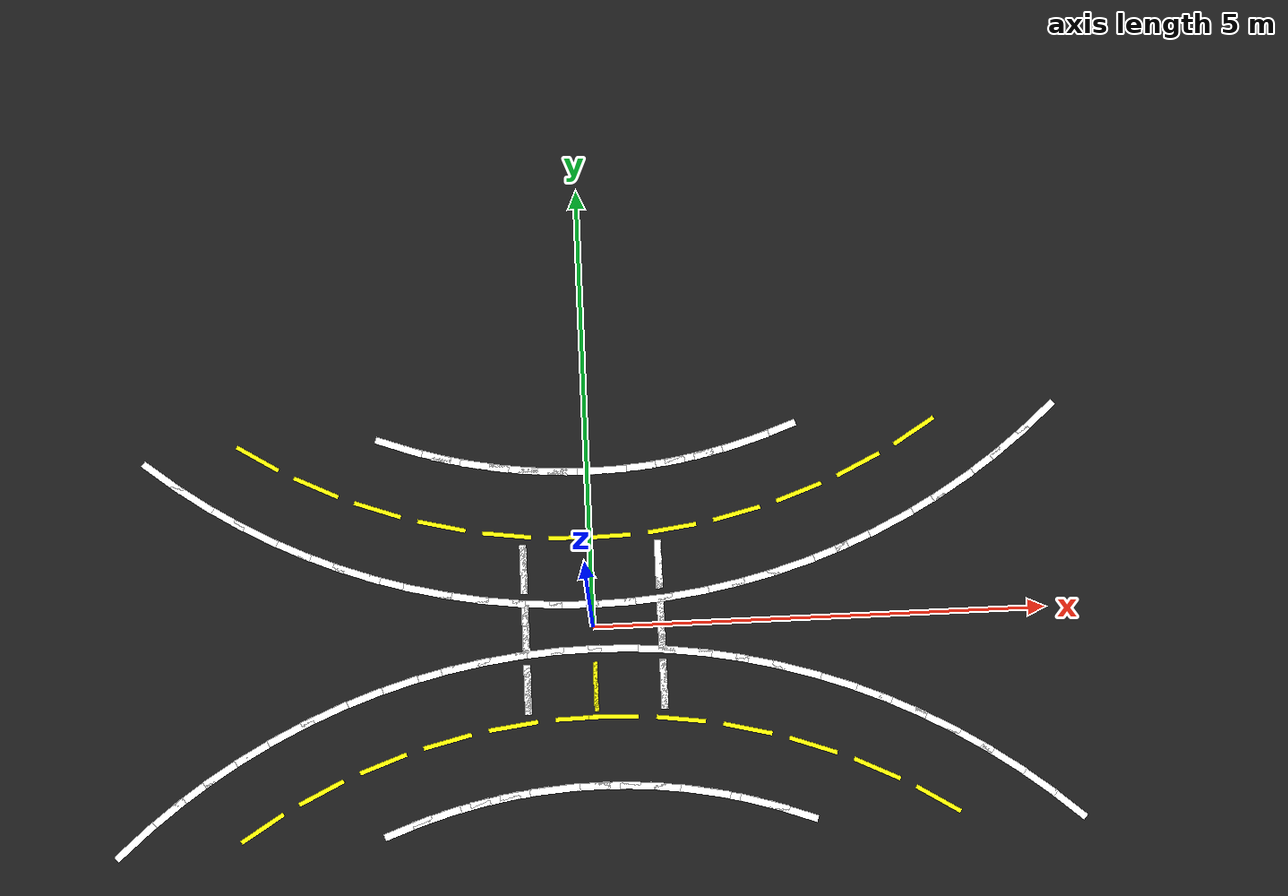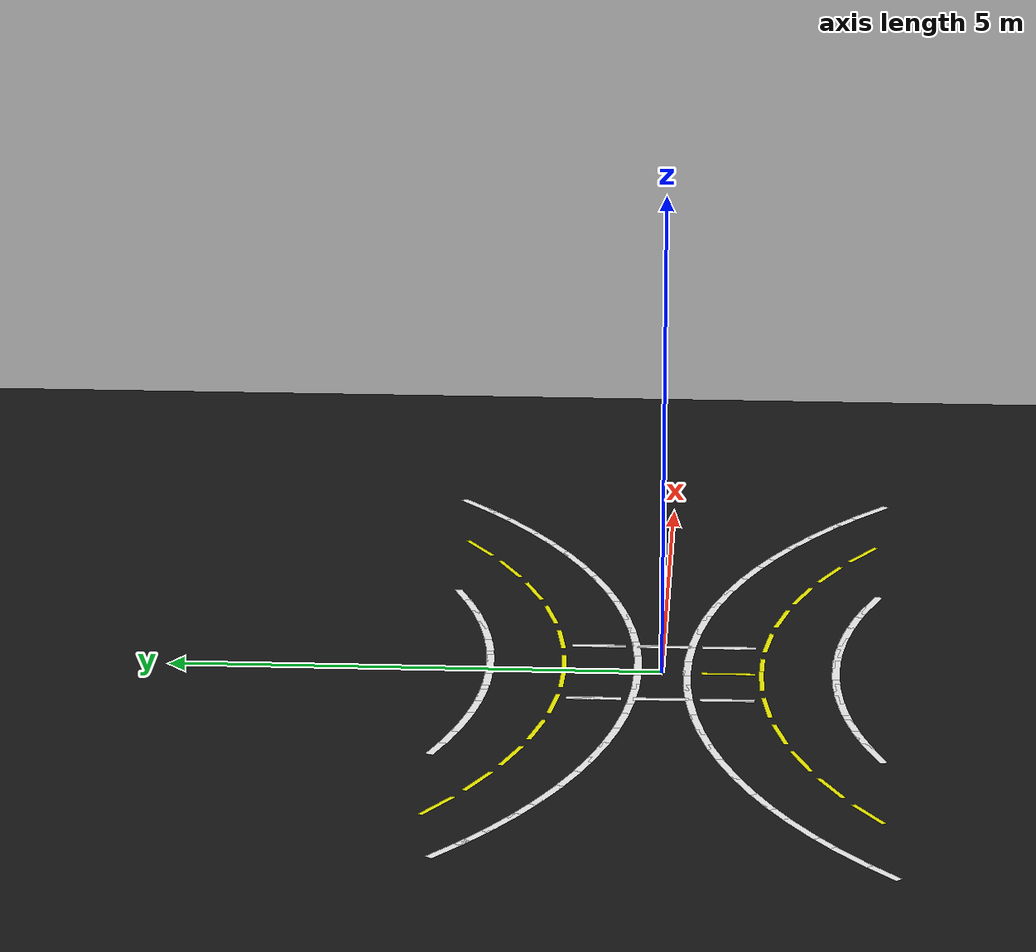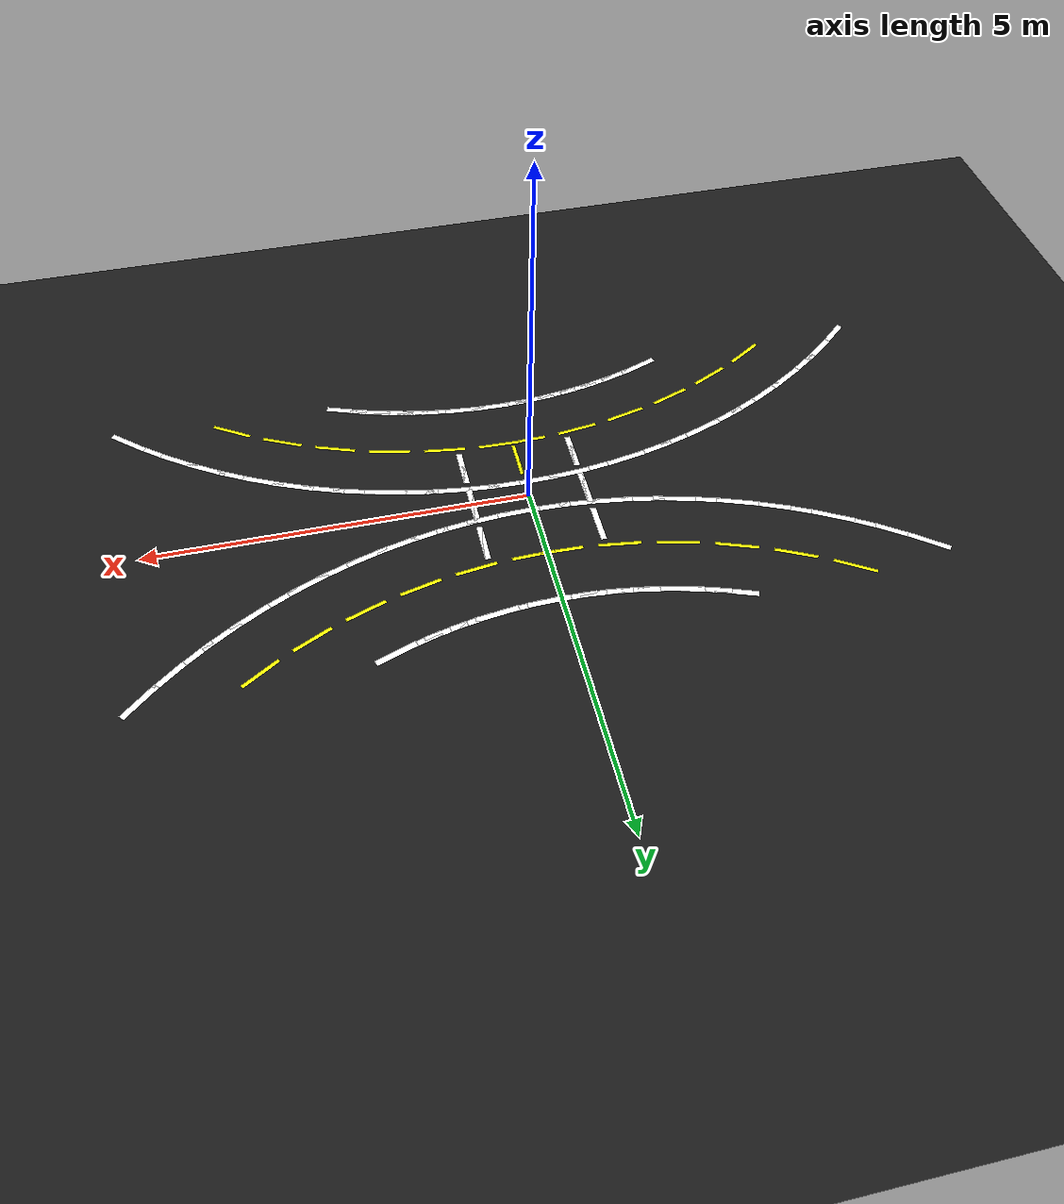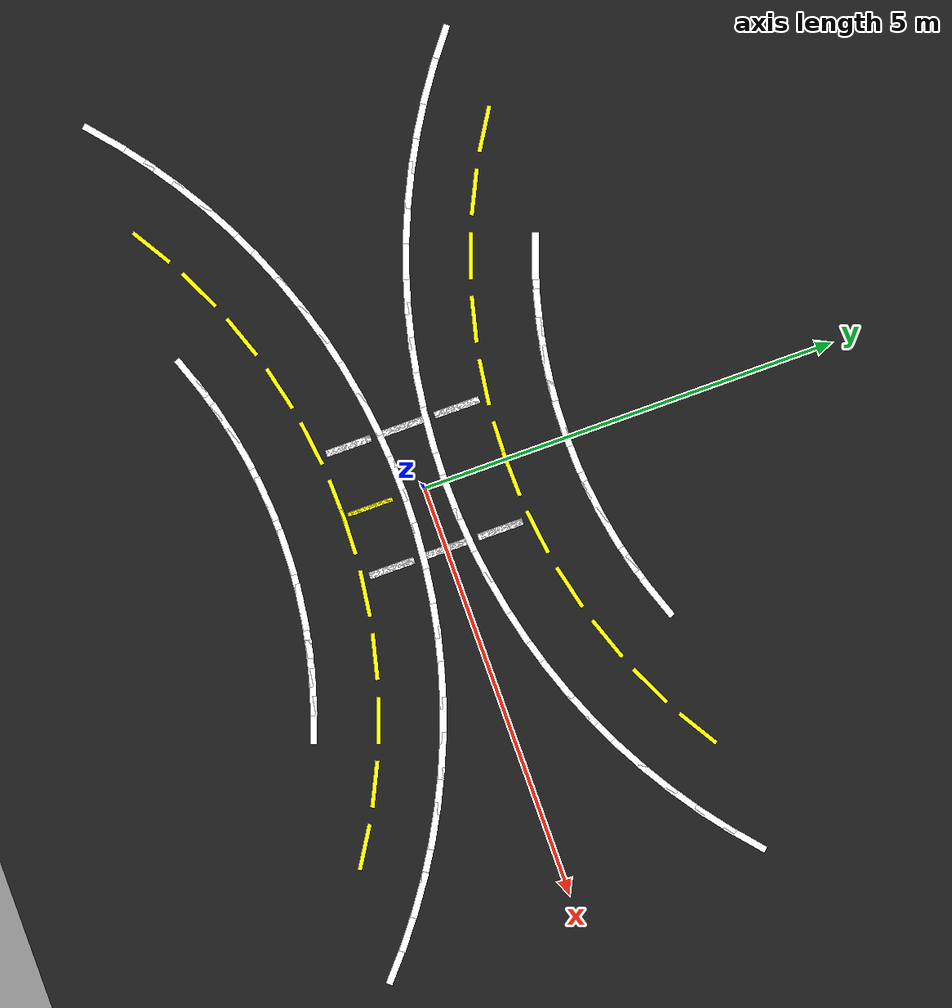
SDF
<sdf version="1.6">
 <world name="lane_world">
  <model name="ground">
   <static>true</static>
   <link name="link">
    <visual name="v">
     <geometry><plane><normal>0 0 1</normal><size>80 80</size></plane></geometry>
     <material><ambient>0.10 0.10 0.10 1</ambient><diffuse>0.10 0.10 0.10 1</diffuse></material>
    </visual>
    <collision name="c"><geometry><plane><normal>0 0 1</normal><size>80 80</size></plane></geometry></collision>
   </link>
  </model>
  <model name="seg_0000">
   <static>true</static>
   <pose>0.2046 0.2527 0.002 0 0 -3.1152</pose>
   <link name="link">
    <visual name="v">
     <geometry><box><size>0.550 0.080 0.0020</size></box></geometry>
     <material><ambient>1 1 1 1</ambient><diffuse>1 1 1 1</diffuse></material>
    </visual>
   </link>
  </model>
  <model name="seg_0001">
   <static>true</static>
   <pose>0.1650 1.7522 0.002 0 0 -3.1152</pose>
   <link name="link">
    <visual name="v">
     <geometry><box><size>0.550 0.080 0.0020</size></box></geometry>
     <material><ambient>1 1 1 1</ambient><diffuse>1 1 1 1</diffuse></material>
    </visual>
   </link>
  </model>
  <model name="seg_0002">
   <static>true</static>
   <pose>0.1848 1.0024 0.002 0 0 -3.1152</pose>
   <link name="link">
    <visual name="v">
     <geometry><box><size>0.550 0.05 0.0020</size></box></geometry>
     <material><ambient>1 1 0 1</ambient><diffuse>1 1 0 1</diffuse></material>
    </visual>
   </link>
  </model>
  <model name="seg_0003">
   <static>true</static>
   <pose>0.6132 0.2743 0.002 0 0 -3.0624</pose>
   <link name="link">
    <visual name="v">
     <geometry><box><size>0.550 0.080 0.0020</size></box></geometry>
     <material><ambient>1 1 1 1</ambient><diffuse>1 1 1 1</diffuse></material>
    </visual>
   </link>
  </model>
  <model name="seg_0004">
   <static>true</static>
   <pose>0.4945 1.7696 0.002 0 0 -3.0624</pose>
   <link name="link">
    <visual name="v">
     <geometry><box><size>0.550 0.080 0.0020</size></box></geometry>
     <material><ambient>1 1 1 1</ambient><diffuse>1 1 1 1</diffuse></material>
    </visual>
   </link>
  </model>
  <model name="seg_0005">
   <static>true</static>
   <pose>1.0200 0.3174 0.002 0 0 -3.0096</pose>
   <link name="link">
    <visual name="v">
     <geometry><box><size>0.550 0.080 0.0020</size></box></geometry>
     <material><ambient>1 1 1 1</ambient><diffuse>1 1 1 1</diffuse></material>
    </visual>
   </link>
  </model>
  <model name="seg_0006">
   <static>true</static>
   <pose>0.8226 1.8044 0.002 0 0 -3.0096</pose>
   <link name="link">
    <visual name="v">
     <geometry><box><size>0.550 0.080 0.0020</size></box></geometry>
     <material><ambient>1 1 1 1</ambient><diffuse>1 1 1 1</diffuse></material>
    </visual>
   </link>
  </model>
  <model name="seg_0007">
   <static>true</static>
   <pose>0.9213 1.0609 0.002 0 0 -3.0096</pose>
   <link name="link">
    <visual name="v">
     <geometry><box><size>0.550 0.05 0.0020</size></box></geometry>
     <material><ambient>1 1 0 1</ambient><diffuse>1 1 0 1</diffuse></material>
    </visual>
   </link>
  </model>
  <model name="seg_0008">
   <static>true</static>
   <pose>1.4241 0.3820 0.002 0 0 -2.9568</pose>
   <link name="link">
    <visual name="v">
     <geometry><box><size>0.550 0.080 0.0020</size></box></geometry>
     <material><ambient>1 1 1 1</ambient><diffuse>1 1 1 1</diffuse></material>
    </visual>
   </link>
  </model>
  <model name="seg_0009">
   <static>true</static>
   <pose>1.1484 1.8564 0.002 0 0 -2.9568</pose>
   <link name="link">
    <visual name="v">
     <geometry><box><size>0.550 0.080 0.0020</size></box></geometry>
     <material><ambient>1 1 1 1</ambient><diffuse>1 1 1 1</diffuse></material>
    </visual>
   </link>
  </model>
  <model name="seg_0010">
   <static>true</static>
   <pose>1.8241 0.4677 0.002 0 0 -2.9040</pose>
   <link name="link">
    <visual name="v">
     <geometry><box><size>0.550 0.080 0.0020</size></box></geometry>
     <material><ambient>1 1 1 1</ambient><diffuse>1 1 1 1</diffuse></material>
    </visual>
   </link>
  </model>
  <model name="seg_0011">
   <static>true</static>
   <pose>1.4711 1.9256 0.002 0 0 -2.9040</pose>
   <link name="link">
    <visual name="v">
     <geometry><box><size>0.550 0.080 0.0020</size></box></geometry>
     <material><ambient>1 1 1 1</ambient><diffuse>1 1 1 1</diffuse></material>
    </visual>
   </link>
  </model>
  <model name="seg_0012">
   <static>true</static>
   <pose>1.6476 1.1967 0.002 0 0 -2.9040</pose>
   <link name="link">
    <visual name="v">
     <geometry><box><size>0.550 0.05 0.0020</size></box></geometry>
     <material><ambient>1 1 0 1</ambient><diffuse>1 1 0 1</diffuse></material>
    </visual>
   </link>
  </model>
  <model name="seg_0013">
   <static>true</static>
   <pose>2.2191 0.5745 0.002 0 0 -2.8512</pose>
   <link name="link">
    <visual name="v">
     <geometry><box><size>0.550 0.080 0.0020</size></box></geometry>
     <material><ambient>1 1 1 1</ambient><diffuse>1 1 1 1</diffuse></material>
    </visual>
   </link>
  </model>
  <model name="seg_0014">
   <static>true</static>
   <pose>1.7896 2.0117 0.002 0 0 -2.8512</pose>
   <link name="link">
    <visual name="v">
     <geometry><box><size>0.550 0.080 0.0020</size></box></geometry>
     <material><ambient>1 1 1 1</ambient><diffuse>1 1 1 1</diffuse></material>
    </visual>
   </link>
  </model>
  <model name="seg_0015">
   <static>true</static>
   <pose>2.6079 0.7020 0.002 0 0 -2.7984</pose>
   <link name="link">
    <visual name="v">
     <geometry><box><size>0.550 0.080 0.0020</size></box></geometry>
     <material><ambient>1 1 1 1</ambient><diffuse>1 1 1 1</diffuse></material>
    </visual>
   </link>
  </model>
  <model name="seg_0016">
   <static>true</static>
   <pose>2.1031 2.1145 0.002 0 0 -2.7984</pose>
   <link name="link">
    <visual name="v">
     <geometry><box><size>0.550 0.080 0.0020</size></box></geometry>
     <material><ambient>1 1 1 1</ambient><diffuse>1 1 1 1</diffuse></material>
    </visual>
   </link>
  </model>
  <model name="seg_0017">
   <static>true</static>
   <pose>2.3555 1.4082 0.002 0 0 -2.7984</pose>
   <link name="link">
    <visual name="v">
     <geometry><box><size>0.550 0.05 0.0020</size></box></geometry>
     <material><ambient>1 1 0 1</ambient><diffuse>1 1 0 1</diffuse></material>
    </visual>
   </link>
  </model>
  <model name="seg_0018">
   <static>true</static>
   <pose>2.9894 0.8498 0.002 0 0 -2.7456</pose>
   <link name="link">
    <visual name="v">
     <geometry><box><size>0.550 0.080 0.0020</size></box></geometry>
     <material><ambient>1 1 1 1</ambient><diffuse>1 1 1 1</diffuse></material>
    </visual>
   </link>
  </model>
  <model name="seg_0020">
   <static>true</static>
   <pose>3.3626 1.0175 0.002 0 0 -2.6928</pose>
   <link name="link">
    <visual name="v">
     <geometry><box><size>0.550 0.080 0.0020</size></box></geometry>
     <material><ambient>1 1 1 1</ambient><diffuse>1 1 1 1</diffuse></material>
    </visual>
   </link>
  </model>
  <model name="seg_0022">
   <static>true</static>
   <pose>3.0372 1.6932 0.002 0 0 -2.6928</pose>
   <link name="link">
    <visual name="v">
     <geometry><box><size>0.550 0.05 0.0020</size></box></geometry>
     <material><ambient>1 1 0 1</ambient><diffuse>1 1 0 1</diffuse></material>
    </visual>
   </link>
  </model>
  <model name="seg_0023">
   <static>true</static>
   <pose>3.7264 1.2047 0.002 0 0 -2.6400</pose>
   <link name="link">
    <visual name="v">
     <geometry><box><size>0.550 0.080 0.0020</size></box></geometry>
     <material><ambient>1 1 1 1</ambient><diffuse>1 1 1 1</diffuse></material>
    </visual>
   </link>
  </model>
  <model name="seg_0025">
   <static>true</static>
   <pose>4.0798 1.4108 0.002 0 0 -2.5872</pose>
   <link name="link">
    <visual name="v">
     <geometry><box><size>0.550 0.080 0.0020</size></box></geometry>
     <material><ambient>1 1 1 1</ambient><diffuse>1 1 1 1</diffuse></material>
    </visual>
   </link>
  </model>
  <model name="seg_0027">
   <static>true</static>
   <pose>3.6850 2.0485 0.002 0 0 -2.5872</pose>
   <link name="link">
    <visual name="v">
     <geometry><box><size>0.550 0.05 0.0020</size></box></geometry>
     <material><ambient>1 1 0 1</ambient><diffuse>1 1 0 1</diffuse></material>
    </visual>
   </link>
  </model>
  <model name="seg_0028">
   <static>true</static>
   <pose>4.4219 1.6353 0.002 0 0 -2.5344</pose>
   <link name="link">
    <visual name="v">
     <geometry><box><size>0.550 0.080 0.0020</size></box></geometry>
     <material><ambient>1 1 1 1</ambient><diffuse>1 1 1 1</diffuse></material>
    </visual>
   </link>
  </model>
  <model name="seg_0030">
   <static>true</static>
   <pose>4.7516 1.8776 0.002 0 0 -2.4816</pose>
   <link name="link">
    <visual name="v">
     <geometry><box><size>0.550 0.080 0.0020</size></box></geometry>
     <material><ambient>1 1 1 1</ambient><diffuse>1 1 1 1</diffuse></material>
    </visual>
   </link>
  </model>
  <model name="seg_0033">
   <static>true</static>
   <pose>5.0681 2.1369 0.002 0 0 -2.4288</pose>
   <link name="link">
    <visual name="v">
     <geometry><box><size>0.550 0.080 0.0020</size></box></geometry>
     <material><ambient>1 1 1 1</ambient><diffuse>1 1 1 1</diffuse></material>
    </visual>
   </link>
  </model>
  <model name="seg_0265">
   <static>true</static>
   <pose>-4.7516 1.8776 0.002 0 0 2.4816</pose>
   <link name="link">
    <visual name="v">
     <geometry><box><size>0.550 0.080 0.0020</size></box></geometry>
     <material><ambient>1 1 1 1</ambient><diffuse>1 1 1 1</diffuse></material>
    </visual>
   </link>
  </model>
  <model name="seg_0268">
   <static>true</static>
   <pose>-4.4219 1.6353 0.002 0 0 2.5344</pose>
   <link name="link">
    <visual name="v">
     <geometry><box><size>0.550 0.080 0.0020</size></box></geometry>
     <material><ambient>1 1 1 1</ambient><diffuse>1 1 1 1</diffuse></material>
    </visual>
   </link>
  </model>
  <model name="seg_0270">
   <static>true</static>
   <pose>-4.0798 1.4108 0.002 0 0 2.5872</pose>
   <link name="link">
    <visual name="v">
     <geometry><box><size>0.550 0.080 0.0020</size></box></geometry>
     <material><ambient>1 1 1 1</ambient><diffuse>1 1 1 1</diffuse></material>
    </visual>
   </link>
  </model>
  <model name="seg_0272">
   <static>true</static>
   <pose>-3.6850 2.0485 0.002 0 0 2.5872</pose>
   <link name="link">
    <visual name="v">
     <geometry><box><size>0.550 0.05 0.0020</size></box></geometry>
     <material><ambient>1 1 0 1</ambient><diffuse>1 1 0 1</diffuse></material>
    </visual>
   </link>
  </model>
  <model name="seg_0273">
   <static>true</static>
   <pose>-3.7264 1.2047 0.002 0 0 2.6400</pose>
   <link name="link">
    <visual name="v">
     <geometry><box><size>0.550 0.080 0.0020</size></box></geometry>
     <material><ambient>1 1 1 1</ambient><diffuse>1 1 1 1</diffuse></material>
    </visual>
   </link>
  </model>
  <model name="seg_0275">
   <static>true</static>
   <pose>-3.3626 1.0175 0.002 0 0 2.6928</pose>
   <link name="link">
    <visual name="v">
     <geometry><box><size>0.550 0.080 0.0020</size></box></geometry>
     <material><ambient>1 1 1 1</ambient><diffuse>1 1 1 1</diffuse></material>
    </visual>
   </link>
  </model>
  <model name="seg_0277">
   <static>true</static>
   <pose>-3.0372 1.6932 0.002 0 0 2.6928</pose>
   <link name="link">
    <visual name="v">
     <geometry><box><size>0.550 0.05 0.0020</size></box></geometry>
     <material><ambient>1 1 0 1</ambient><diffuse>1 1 0 1</diffuse></material>
    </visual>
   </link>
  </model>
  <model name="seg_0278">
   <static>true</static>
   <pose>-2.9894 0.8498 0.002 0 0 2.7456</pose>
   <link name="link">
    <visual name="v">
     <geometry><box><size>0.550 0.080 0.0020</size></box></geometry>
     <material><ambient>1 1 1 1</ambient><diffuse>1 1 1 1</diffuse></material>
    </visual>
   </link>
  </model>
  <model name="seg_0280">
   <static>true</static>
   <pose>-2.6079 0.7020 0.002 0 0 2.7984</pose>
   <link name="link">
    <visual name="v">
     <geometry><box><size>0.550 0.080 0.0020</size></box></geometry>
     <material><ambient>1 1 1 1</ambient><diffuse>1 1 1 1</diffuse></material>
    </visual>
   </link>
  </model>
  <model name="seg_0281">
   <static>true</static>
   <pose>-2.1031 2.1145 0.002 0 0 2.7984</pose>
   <link name="link">
    <visual name="v">
     <geometry><box><size>0.550 0.080 0.0020</size></box></geometry>
     <material><ambient>1 1 1 1</ambient><diffuse>1 1 1 1</diffuse></material>
    </visual>
   </link>
  </model>
  <model name="seg_0282">
   <static>true</static>
   <pose>-2.3555 1.4082 0.002 0 0 2.7984</pose>
   <link name="link">
    <visual name="v">
     <geometry><box><size>0.550 0.05 0.0020</size></box></geometry>
     <material><ambient>1 1 0 1</ambient><diffuse>1 1 0 1</diffuse></material>
    </visual>
   </link>
  </model>
  <model name="seg_0283">
   <static>true</static>
   <pose>-2.2191 0.5745 0.002 0 0 2.8512</pose>
   <link name="link">
    <visual name="v">
     <geometry><box><size>0.550 0.080 0.0020</size></box></geometry>
     <material><ambient>1 1 1 1</ambient><diffuse>1 1 1 1</diffuse></material>
    </visual>
   </link>
  </model>
  <model name="seg_0284">
   <static>true</static>
   <pose>-1.7896 2.0117 0.002 0 0 2.8512</pose>
   <link name="link">
    <visual name="v">
     <geometry><box><size>0.550 0.080 0.0020</size></box></geometry>
     <material><ambient>1 1 1 1</ambient><diffuse>1 1 1 1</diffuse></material>
    </visual>
   </link>
  </model>
  <model name="seg_0285">
   <static>true</static>
   <pose>-1.8241 0.4677 0.002 0 0 2.9040</pose>
   <link name="link">
    <visual name="v">
     <geometry><box><size>0.550 0.080 0.0020</size></box></geometry>
     <material><ambient>1 1 1 1</ambient><diffuse>1 1 1 1</diffuse></material>
    </visual>
   </link>
  </model>
  <model name="seg_0286">
   <static>true</static>
   <pose>-1.4711 1.9256 0.002 0 0 2.9040</pose>
   <link name="link">
    <visual name="v">
     <geometry><box><size>0.550 0.080 0.0020</size></box></geometry>
     <material><ambient>1 1 1 1</ambient><diffuse>1 1 1 1</diffuse></material>
    </visual>
   </link>
  </model>
  <model name="seg_0287">
   <static>true</static>
   <pose>-1.6476 1.1967 0.002 0 0 2.9040</pose>
   <link name="link">
    <visual name="v">
     <geometry><box><size>0.550 0.05 0.0020</size></box></geometry>
     <material><ambient>1 1 0 1</ambient><diffuse>1 1 0 1</diffuse></material>
    </visual>
   </link>
  </model>
  <model name="seg_0288">
   <static>true</static>
   <pose>-1.4241 0.3820 0.002 0 0 2.9568</pose>
   <link name="link">
    <visual name="v">
     <geometry><box><size>0.550 0.080 0.0020</size></box></geometry>
     <material><ambient>1 1 1 1</ambient><diffuse>1 1 1 1</diffuse></material>
    </visual>
   </link>
  </model>
  <model name="seg_0289">
   <static>true</static>
   <pose>-1.1484 1.8564 0.002 0 0 2.9568</pose>
   <link name="link">
    <visual name="v">
     <geometry><box><size>0.550 0.080 0.0020</size></box></geometry>
     <material><ambient>1 1 1 1</ambient><diffuse>1 1 1 1</diffuse></material>
    </visual>
   </link>
  </model>
  <model name="seg_0290">
   <static>true</static>
   <pose>-1.0200 0.3174 0.002 0 0 3.0096</pose>
   <link name="link">
    <visual name="v">
     <geometry><box><size>0.550 0.080 0.0020</size></box></geometry>
     <material><ambient>1 1 1 1</ambient><diffuse>1 1 1 1</diffuse></material>
    </visual>
   </link>
  </model>
  <model name="seg_0291">
   <static>true</static>
   <pose>-0.8226 1.8044 0.002 0 0 3.0096</pose>
   <link name="link">
    <visual name="v">
     <geometry><box><size>0.550 0.080 0.0020</size></box></geometry>
     <material><ambient>1 1 1 1</ambient><diffuse>1 1 1 1</diffuse></material>
    </visual>
   </link>
  </model>
  <model name="seg_0292">
   <static>true</static>
   <pose>-0.9213 1.0609 0.002 0 0 3.0096</pose>
   <link name="link">
    <visual name="v">
     <geometry><box><size>0.550 0.05 0.0020</size></box></geometry>
     <material><ambient>1 1 0 1</ambient><diffuse>1 1 0 1</diffuse></material>
    </visual>
   </link>
  </model>
  <model name="seg_0293">
   <static>true</static>
   <pose>-0.6132 0.2743 0.002 0 0 3.0624</pose>
   <link name="link">
    <visual name="v">
     <geometry><box><size>0.550 0.080 0.0020</size></box></geometry>
     <material><ambient>1 1 1 1</ambient><diffuse>1 1 1 1</diffuse></material>
    </visual>
   </link>
  </model>
  <model name="seg_0294">
   <static>true</static>
   <pose>-0.4945 1.7696 0.002 0 0 3.0624</pose>
   <link name="link">
    <visual name="v">
     <geometry><box><size>0.550 0.080 0.0020</size></box></geometry>
     <material><ambient>1 1 1 1</ambient><diffuse>1 1 1 1</diffuse></material>
    </visual>
   </link>
  </model>
  <model name="seg_0295">
   <static>true</static>
   <pose>-0.2046 0.2527 0.002 0 0 3.1152</pose>
   <link name="link">
    <visual name="v">
     <geometry><box><size>0.550 0.080 0.0020</size></box></geometry>
     <material><ambient>1 1 1 1</ambient><diffuse>1 1 1 1</diffuse></material>
    </visual>
   </link>
  </model>
  <model name="seg_0296">
   <static>true</static>
   <pose>-0.1650 1.7522 0.002 0 0 3.1152</pose>
   <link name="link">
    <visual name="v">
     <geometry><box><size>0.550 0.080 0.0020</size></box></geometry>
     <material><ambient>1 1 1 1</ambient><diffuse>1 1 1 1</diffuse></material>
    </visual>
   </link>
  </model>
  <model name="seg_0297">
   <static>true</static>
   <pose>-0.1848 1.0024 0.002 0 0 3.1152</pose>
   <link name="link">
    <visual name="v">
     <geometry><box><size>0.550 0.05 0.0020</size></box></geometry>
     <material><ambient>1 1 0 1</ambient><diffuse>1 1 0 1</diffuse></material>
    </visual>
   </link>
  </model>
  <model name="seg_0298">
   <static>true</static>
   <pose>0.1650 -1.7522 0.002 0 0 3.1152</pose>
   <link name="link">
    <visual name="v">
     <geometry><box><size>0.550 0.080 0.0020</size></box></geometry>
     <material><ambient>1 1 1 1</ambient><diffuse>1 1 1 1</diffuse></material>
    </visual>
   </link>
  </model>
  <model name="seg_0299">
   <static>true</static>
   <pose>0.2046 -0.2527 0.002 0 0 3.1152</pose>
   <link name="link">
    <visual name="v">
     <geometry><box><size>0.550 0.080 0.0020</size></box></geometry>
     <material><ambient>1 1 1 1</ambient><diffuse>1 1 1 1</diffuse></material>
    </visual>
   </link>
  </model>
  <model name="seg_0300">
   <static>true</static>
   <pose>0.1848 -1.0024 0.002 0 0 3.1152</pose>
   <link name="link">
    <visual name="v">
     <geometry><box><size>0.550 0.05 0.0020</size></box></geometry>
     <material><ambient>1 1 0 1</ambient><diffuse>1 1 0 1</diffuse></material>
    </visual>
   </link>
  </model>
  <model name="seg_0301">
   <static>true</static>
   <pose>0.4945 -1.7696 0.002 0 0 3.0624</pose>
   <link name="link">
    <visual name="v">
     <geometry><box><size>0.550 0.080 0.0020</size></box></geometry>
     <material><ambient>1 1 1 1</ambient><diffuse>1 1 1 1</diffuse></material>
    </visual>
   </link>
  </model>
  <model name="seg_0302">
   <static>true</static>
   <pose>0.6132 -0.2743 0.002 0 0 3.0624</pose>
   <link name="link">
    <visual name="v">
     <geometry><box><size>0.550 0.080 0.0020</size></box></geometry>
     <material><ambient>1 1 1 1</ambient><diffuse>1 1 1 1</diffuse></material>
    </visual>
   </link>
  </model>
  <model name="seg_0303">
   <static>true</static>
   <pose>0.8226 -1.8044 0.002 0 0 3.0096</pose>
   <link name="link">
    <visual name="v">
     <geometry><box><size>0.550 0.080 0.0020</size></box></geometry>
     <material><ambient>1 1 1 1</ambient><diffuse>1 1 1 1</diffuse></material>
    </visual>
   </link>
  </model>
  <model name="seg_0304">
   <static>true</static>
   <pose>1.0200 -0.3174 0.002 0 0 3.0096</pose>
   <link name="link">
    <visual name="v">
     <geometry><box><size>0.550 0.080 0.0020</size></box></geometry>
     <material><ambient>1 1 1 1</ambient><diffuse>1 1 1 1</diffuse></material>
    </visual>
   </link>
  </model>
  <model name="seg_0305">
   <static>true</static>
   <pose>0.9213 -1.0609 0.002 0 0 3.0096</pose>
   <link name="link">
    <visual name="v">
     <geometry><box><size>0.550 0.05 0.0020</size></box></geometry>
     <material><ambient>1 1 0 1</ambient><diffuse>1 1 0 1</diffuse></material>
    </visual>
   </link>
  </model>
  <model name="seg_0306">
   <static>true</static>
   <pose>1.1484 -1.8564 0.002 0 0 2.9568</pose>
   <link name="link">
    <visual name="v">
     <geometry><box><size>0.550 0.080 0.0020</size></box></geometry>
     <material><ambient>1 1 1 1</ambient><diffuse>1 1 1 1</diffuse></material>
    </visual>
   </link>
  </model>
  <model name="seg_0307">
   <static>true</static>
   <pose>1.4241 -0.3820 0.002 0 0 2.9568</pose>
   <link name="link">
    <visual name="v">
     <geometry><box><size>0.550 0.080 0.0020</size></box></geometry>
     <material><ambient>1 1 1 1</ambient><diffuse>1 1 1 1</diffuse></material>
    </visual>
   </link>
  </model>
  <model name="seg_0308">
   <static>true</static>
   <pose>1.4711 -1.9256 0.002 0 0 2.9040</pose>
   <link name="link">
    <visual name="v">
     <geometry><box><size>0.550 0.080 0.0020</size></box></geometry>
     <material><ambient>1 1 1 1</ambient><diffuse>1 1 1 1</diffuse></material>
    </visual>
   </link>
  </model>
  <model name="seg_0309">
   <static>true</static>
   <pose>1.8241 -0.4677 0.002 0 0 2.9040</pose>
   <link name="link">
    <visual name="v">
     <geometry><box><size>0.550 0.080 0.0020</size></box></geometry>
     <material><ambient>1 1 1 1</ambient><diffuse>1 1 1 1</diffuse></material>
    </visual>
   </link>
  </model>
  <model name="seg_0310">
   <static>true</static>
   <pose>1.6476 -1.1967 0.002 0 0 2.9040</pose>
   <link name="link">
    <visual name="v">
     <geometry><box><size>0.550 0.05 0.0020</size></box></geometry>
     <material><ambient>1 1 0 1</ambient><diffuse>1 1 0 1</diffuse></material>
    </visual>
   </link>
  </model>
  <model name="seg_0311">
   <static>true</static>
   <pose>1.7896 -2.0117 0.002 0 0 2.8512</pose>
   <link name="link">
    <visual name="v">
     <geometry><box><size>0.550 0.080 0.0020</size></box></geometry>
     <material><ambient>1 1 1 1</ambient><diffuse>1 1 1 1</diffuse></material>
    </visual>
   </link>
  </model>
  <model name="seg_0312">
   <static>true</static>
   <pose>2.2191 -0.5745 0.002 0 0 2.8512</pose>
   <link name="link">
    <visual name="v">
     <geometry><box><size>0.550 0.080 0.0020</size></box></geometry>
     <material><ambient>1 1 1 1</ambient><diffuse>1 1 1 1</diffuse></material>
    </visual>
   </link>
  </model>
  <model name="seg_0313">
   <static>true</static>
   <pose>2.1031 -2.1145 0.002 0 0 2.7984</pose>
   <link name="link">
    <visual name="v">
     <geometry><box><size>0.550 0.080 0.0020</size></box></geometry>
     <material><ambient>1 1 1 1</ambient><diffuse>1 1 1 1</diffuse></material>
    </visual>
   </link>
  </model>
  <model name="seg_0314">
   <static>true</static>
   <pose>2.6079 -0.7020 0.002 0 0 2.7984</pose>
   <link name="link">
    <visual name="v">
     <geometry><box><size>0.550 0.080 0.0020</size></box></geometry>
     <material><ambient>1 1 1 1</ambient><diffuse>1 1 1 1</diffuse></material>
    </visual>
   </link>
  </model>
  <model name="seg_0315">
   <static>true</static>
   <pose>2.3555 -1.4082 0.002 0 0 2.7984</pose>
   <link name="link">
    <visual name="v">
     <geometry><box><size>0.550 0.05 0.0020</size></box></geometry>
     <material><ambient>1 1 0 1</ambient><diffuse>1 1 0 1</diffuse></material>
    </visual>
   </link>
  </model>
  <model name="seg_0317">
   <static>true</static>
   <pose>2.9894 -0.8498 0.002 0 0 2.7456</pose>
   <link name="link">
    <visual name="v">
     <geometry><box><size>0.550 0.080 0.0020</size></box></geometry>
     <material><ambient>1 1 1 1</ambient><diffuse>1 1 1 1</diffuse></material>
    </visual>
   </link>
  </model>
  <model name="seg_0319">
   <static>true</static>
   <pose>3.3626 -1.0175 0.002 0 0 2.6928</pose>
   <link name="link">
    <visual name="v">
     <geometry><box><size>0.550 0.080 0.0020</size></box></geometry>
     <material><ambient>1 1 1 1</ambient><diffuse>1 1 1 1</diffuse></material>
    </visual>
   </link>
  </model>
  <model name="seg_0320">
   <static>true</static>
   <pose>3.0372 -1.6932 0.002 0 0 2.6928</pose>
   <link name="link">
    <visual name="v">
     <geometry><box><size>0.550 0.05 0.0020</size></box></geometry>
     <material><ambient>1 1 0 1</ambient><diffuse>1 1 0 1</diffuse></material>
    </visual>
   </link>
  </model>
  <model name="seg_0322">
   <static>true</static>
   <pose>3.7264 -1.2047 0.002 0 0 2.6400</pose>
   <link name="link">
    <visual name="v">
     <geometry><box><size>0.550 0.080 0.0020</size></box></geometry>
     <material><ambient>1 1 1 1</ambient><diffuse>1 1 1 1</diffuse></material>
    </visual>
   </link>
  </model>
  <model name="seg_0324">
   <static>true</static>
   <pose>4.0798 -1.4108 0.002 0 0 2.5872</pose>
   <link name="link">
    <visual name="v">
     <geometry><box><size>0.550 0.080 0.0020</size></box></geometry>
     <material><ambient>1 1 1 1</ambient><diffuse>1 1 1 1</diffuse></material>
    </visual>
   </link>
  </model>
  <model name="seg_0325">
   <static>true</static>
   <pose>3.6850 -2.0485 0.002 0 0 2.5872</pose>
   <link name="link">
    <visual name="v">
     <geometry><box><size>0.550 0.05 0.0020</size></box></geometry>
     <material><ambient>1 1 0 1</ambient><diffuse>1 1 0 1</diffuse></material>
    </visual>
   </link>
  </model>
  <model name="seg_0327">
   <static>true</static>
   <pose>4.4219 -1.6353 0.002 0 0 2.5344</pose>
   <link name="link">
    <visual name="v">
     <geometry><box><size>0.550 0.080 0.0020</size></box></geometry>
     <material><ambient>1 1 1 1</ambient><diffuse>1 1 1 1</diffuse></material>
    </visual>
   </link>
  </model>
  <model name="seg_0329">
   <static>true</static>
   <pose>4.7516 -1.8776 0.002 0 0 2.4816</pose>
   <link name="link">
    <visual name="v">
     <geometry><box><size>0.550 0.080 0.0020</size></box></geometry>
     <material><ambient>1 1 1 1</ambient><diffuse>1 1 1 1</diffuse></material>
    </visual>
   </link>
  </model>
  <model name="seg_0332">
   <static>true</static>
   <pose>5.0681 -2.1369 0.002 0 0 2.4288</pose>
   <link name="link">
    <visual name="v">
     <geometry><box><size>0.550 0.080 0.0020</size></box></geometry>
     <material><ambient>1 1 1 1</ambient><diffuse>1 1 1 1</diffuse></material>
    </visual>
   </link>
  </model>
  <model name="seg_0562">
   <static>true</static>
   <pose>-5.0681 -2.1369 0.002 0 0 -2.4288</pose>
   <link name="link">
    <visual name="v">
     <geometry><box><size>0.550 0.080 0.0020</size></box></geometry>
     <material><ambient>1 1 1 1</ambient><diffuse>1 1 1 1</diffuse></material>
    </visual>
   </link>
  </model>
  <model name="seg_0564">
   <static>true</static>
   <pose>-4.7516 -1.8776 0.002 0 0 -2.4816</pose>
   <link name="link">
    <visual name="v">
     <geometry><box><size>0.550 0.080 0.0020</size></box></geometry>
     <material><ambient>1 1 1 1</ambient><diffuse>1 1 1 1</diffuse></material>
    </visual>
   </link>
  </model>
  <model name="seg_0567">
   <static>true</static>
   <pose>-4.4219 -1.6353 0.002 0 0 -2.5344</pose>
   <link name="link">
    <visual name="v">
     <geometry><box><size>0.550 0.080 0.0020</size></box></geometry>
     <material><ambient>1 1 1 1</ambient><diffuse>1 1 1 1</diffuse></material>
    </visual>
   </link>
  </model>
  <model name="seg_0569">
   <static>true</static>
   <pose>-4.0798 -1.4108 0.002 0 0 -2.5872</pose>
   <link name="link">
    <visual name="v">
     <geometry><box><size>0.550 0.080 0.0020</size></box></geometry>
     <material><ambient>1 1 1 1</ambient><diffuse>1 1 1 1</diffuse></material>
    </visual>
   </link>
  </model>
  <model name="seg_0570">
   <static>true</static>
   <pose>-3.6850 -2.0485 0.002 0 0 -2.5872</pose>
   <link name="link">
    <visual name="v">
     <geometry><box><size>0.550 0.05 0.0020</size></box></geometry>
     <material><ambient>1 1 0 1</ambient><diffuse>1 1 0 1</diffuse></material>
    </visual>
   </link>
  </model>
  <model name="seg_0572">
   <static>true</static>
   <pose>-3.7264 -1.2047 0.002 0 0 -2.6400</pose>
   <link name="link">
    <visual name="v">
     <geometry><box><size>0.550 0.080 0.0020</size></box></geometry>
     <material><ambient>1 1 1 1</ambient><diffuse>1 1 1 1</diffuse></material>
    </visual>
   </link>
  </model>
  <model name="seg_0574">
   <static>true</static>
   <pose>-3.3626 -1.0175 0.002 0 0 -2.6928</pose>
   <link name="link">
    <visual name="v">
     <geometry><box><size>0.550 0.080 0.0020</size></box></geometry>
     <material><ambient>1 1 1 1</ambient><diffuse>1 1 1 1</diffuse></material>
    </visual>
   </link>
  </model>
  <model name="seg_0575">
   <static>true</static>
   <pose>-3.0372 -1.6932 0.002 0 0 -2.6928</pose>
   <link name="link">
    <visual name="v">
     <geometry><box><size>0.550 0.05 0.0020</size></box></geometry>
     <material><ambient>1 1 0 1</ambient><diffuse>1 1 0 1</diffuse></material>
    </visual>
   </link>
  </model>
  <model name="seg_0577">
   <static>true</static>
   <pose>-2.9894 -0.8498 0.002 0 0 -2.7456</pose>
   <link name="link">
    <visual name="v">
     <geometry><box><size>0.550 0.080 0.0020</size></box></geometry>
     <material><ambient>1 1 1 1</ambient><diffuse>1 1 1 1</diffuse></material>
    </visual>
   </link>
  </model>
  <model name="seg_0578">
   <static>true</static>
   <pose>-2.1031 -2.1145 0.002 0 0 -2.7984</pose>
   <link name="link">
    <visual name="v">
     <geometry><box><size>0.550 0.080 0.0020</size></box></geometry>
     <material><ambient>1 1 1 1</ambient><diffuse>1 1 1 1</diffuse></material>
    </visual>
   </link>
  </model>
  <model name="seg_0579">
   <static>true</static>
   <pose>-2.6079 -0.7020 0.002 0 0 -2.7984</pose>
   <link name="link">
    <visual name="v">
     <geometry><box><size>0.550 0.080 0.0020</size></box></geometry>
     <material><ambient>1 1 1 1</ambient><diffuse>1 1 1 1</diffuse></material>
    </visual>
   </link>
  </model>
  <model name="seg_0580">
   <static>true</static>
   <pose>-2.3555 -1.4082 0.002 0 0 -2.7984</pose>
   <link name="link">
    <visual name="v">
     <geometry><box><size>0.550 0.05 0.0020</size></box></geometry>
     <material><ambient>1 1 0 1</ambient><diffuse>1 1 0 1</diffuse></material>
    </visual>
   </link>
  </model>
  <model name="seg_0581">
   <static>true</static>
   <pose>-1.7896 -2.0117 0.002 0 0 -2.8512</pose>
   <link name="link">
    <visual name="v">
     <geometry><box><size>0.550 0.080 0.0020</size></box></geometry>
     <material><ambient>1 1 1 1</ambient><diffuse>1 1 1 1</diffuse></material>
    </visual>
   </link>
  </model>
  <model name="seg_0582">
   <static>true</static>
   <pose>-2.2191 -0.5745 0.002 0 0 -2.8512</pose>
   <link name="link">
    <visual name="v">
     <geometry><box><size>0.550 0.080 0.0020</size></box></geometry>
     <material><ambient>1 1 1 1</ambient><diffuse>1 1 1 1</diffuse></material>
    </visual>
   </link>
  </model>
  <model name="seg_0583">
   <static>true</static>
   <pose>-1.4711 -1.9256 0.002 0 0 -2.9040</pose>
   <link name="link">
    <visual name="v">
     <geometry><box><size>0.550 0.080 0.0020</size></box></geometry>
     <material><ambient>1 1 1 1</ambient><diffuse>1 1 1 1</diffuse></material>
    </visual>
   </link>
  </model>
  <model name="seg_0584">
   <static>true</static>
   <pose>-1.8241 -0.4677 0.002 0 0 -2.9040</pose>
   <link name="link">
    <visual name="v">
     <geometry><box><size>0.550 0.080 0.0020</size></box></geometry>
     <material><ambient>1 1 1 1</ambient><diffuse>1 1 1 1</diffuse></material>
    </visual>
   </link>
  </model>
  <model name="seg_0585">
   <static>true</static>
   <pose>-1.6476 -1.1967 0.002 0 0 -2.9040</pose>
   <link name="link">
    <visual name="v">
     <geometry><box><size>0.550 0.05 0.0020</size></box></geometry>
     <material><ambient>1 1 0 1</ambient><diffuse>1 1 0 1</diffuse></material>
    </visual>
   </link>
  </model>
  <model name="seg_0586">
   <static>true</static>
   <pose>-1.1484 -1.8564 0.002 0 0 -2.9568</pose>
   <link name="link">
    <visual name="v">
     <geometry><box><size>0.550 0.080 0.0020</size></box></geometry>
     <material><ambient>1 1 1 1</ambient><diffuse>1 1 1 1</diffuse></material>
    </visual>
   </link>
  </model>
  <model name="seg_0587">
   <static>true</static>
   <pose>-1.4241 -0.3820 0.002 0 0 -2.9568</pose>
   <link name="link">
    <visual name="v">
     <geometry><box><size>0.550 0.080 0.0020</size></box></geometry>
     <material><ambient>1 1 1 1</ambient><diffuse>1 1 1 1</diffuse></material>
    </visual>
   </link>
  </model>
  <model name="seg_0588">
   <static>true</static>
   <pose>-0.8226 -1.8044 0.002 0 0 -3.0096</pose>
   <link name="link">
    <visual name="v">
     <geometry><box><size>0.550 0.080 0.0020</size></box></geometry>
     <material><ambient>1 1 1 1</ambient><diffuse>1 1 1 1</diffuse></material>
    </visual>
   </link>
  </model>
  <model name="seg_0589">
   <static>true</static>
   <pose>-1.0200 -0.3174 0.002 0 0 -3.0096</pose>
   <link name="link">
    <visual name="v">
     <geometry><box><size>0.550 0.080 0.0020</size></box></geometry>
     <material><ambient>1 1 1 1</ambient><diffuse>1 1 1 1</diffuse></material>
    </visual>
   </link>
  </model>
  <model name="seg_0590">
   <static>true</static>
   <pose>-0.9213 -1.0609 0.002 0 0 -3.0096</pose>
   <link name="link">
    <visual name="v">
     <geometry><box><size>0.550 0.05 0.0020</size></box></geometry>
     <material><ambient>1 1 0 1</ambient><diffuse>1 1 0 1</diffuse></material>
    </visual>
   </link>
  </model>
  <model name="seg_0591">
   <static>true</static>
   <pose>-0.4945 -1.7696 0.002 0 0 -3.0624</pose>
   <link name="link">
    <visual name="v">
     <geometry><box><size>0.550 0.080 0.0020</size></box></geometry>
     <material><ambient>1 1 1 1</ambient><diffuse>1 1 1 1</diffuse></material>
    </visual>
   </link>
  </model>
  <model name="seg_0592">
   <static>true</static>
   <pose>-0.6132 -0.2743 0.002 0 0 -3.0624</pose>
   <link name="link">
    <visual name="v">
     <geometry><box><size>0.550 0.080 0.0020</size></box></geometry>
     <material><ambient>1 1 1 1</ambient><diffuse>1 1 1 1</diffuse></material>
    </visual>
   </link>
  </model>
  <model name="seg_0593">
   <static>true</static>
   <pose>-0.1650 -1.7522 0.002 0 0 -3.1152</pose>
   <link name="link">
    <visual name="v">
     <geometry><box><size>0.550 0.080 0.0020</size></box></geometry>
     <material><ambient>1 1 1 1</ambient><diffuse>1 1 1 1</diffuse></material>
    </visual>
   </link>
  </model>
  <model name="seg_0594">
   <static>true</static>
   <pose>-0.2046 -0.2527 0.002 0 0 -3.1152</pose>
   <link name="link">
    <visual name="v">
     <geometry><box><size>0.550 0.080 0.0020</size></box></geometry>
     <material><ambient>1 1 1 1</ambient><diffuse>1 1 1 1</diffuse></material>
    </visual>
   </link>
  </model>
  <model name="seg_0595">
   <static>true</static>
   <pose>-0.1848 -1.0024 0.002 0 0 -3.1152</pose>
   <link name="link">
    <visual name="v">
     <geometry><box><size>0.550 0.05 0.0020</size></box></geometry>
     <material><ambient>1 1 0 1</ambient><diffuse>1 1 0 1</diffuse></material>
    </visual>
   </link>
  </model>
  <model name="seg_0596">
   <static>true</static>
   <pose>0.7500 0.6667 0.002 0 0 -1.5708</pose>
   <link name="link">
    <visual name="v">
     <geometry><box><size>0.550 0.080 0.0020</size></box></geometry>
     <material><ambient>1 1 1 1</ambient><diffuse>1 1 1 1</diffuse></material>
    </visual>
   </link>
  </model>
  <model name="seg_0597">
   <static>true</static>
   <pose>-0.7500 0.6667 0.002 0 0 -1.5708</pose>
   <link name="link">
    <visual name="v">
     <geometry><box><size>0.550 0.080 0.0020</size></box></geometry>
     <material><ambient>1 1 1 1</ambient><diffuse>1 1 1 1</diffuse></material>
    </visual>
   </link>
  </model>
  <model name="seg_0598">
   <static>true</static>
   <pose>0.0000 0.6667 0.002 0 0 -1.5708</pose>
   <link name="link">
    <visual name="v">
     <geometry><box><size>0.550 0.05 0.0020</size></box></geometry>
     <material><ambient>1 1 0 1</ambient><diffuse>1 1 0 1</diffuse></material>
    </visual>
   </link>
  </model>
  <model name="seg_0599">
   <static>true</static>
   <pose>0.7500 0.0000 0.002 0 0 -1.5708</pose>
   <link name="link">
    <visual name="v">
     <geometry><box><size>0.550 0.080 0.0020</size></box></geometry>
     <material><ambient>1 1 1 1</ambient><diffuse>1 1 1 1</diffuse></material>
    </visual>
   </link>
  </model>
  <model name="seg_0600">
   <static>true</static>
   <pose>-0.7500 -0.0000 0.002 0 0 -1.5708</pose>
   <link name="link">
    <visual name="v">
     <geometry><box><size>0.550 0.080 0.0020</size></box></geometry>
     <material><ambient>1 1 1 1</ambient><diffuse>1 1 1 1</diffuse></material>
    </visual>
   </link>
  </model>
  <model name="seg_0601">
   <static>true</static>
   <pose>0.7500 -0.6667 0.002 0 0 -1.5708</pose>
   <link name="link">
    <visual name="v">
     <geometry><box><size>0.550 0.080 0.0020</size></box></geometry>
     <material><ambient>1 1 1 1</ambient><diffuse>1 1 1 1</diffuse></material>
    </visual>
   </link>
  </model>
  <model name="seg_0602">
   <static>true</static>
   <pose>-0.7500 -0.6667 0.002 0 0 -1.5708</pose>
   <link name="link">
    <visual name="v">
     <geometry><box><size>0.550 0.080 0.0020</size></box></geometry>
     <material><ambient>1 1 1 1</ambient><diffuse>1 1 1 1</diffuse></material>
    </visual>
   </link>
  </model>
  <model name="seg_0603">
   <static>true</static>
   <pose>0.0000 -0.6667 0.002 0 0 -1.5708</pose>
   <link name="link">
    <visual name="v">
     <geometry><box><size>0.550 0.05 0.0020</size></box></geometry>
     <material><ambient>1 1 0 1</ambient><diffuse>1 1 0 1</diffuse></material>
    </visual>
   </link>
  </model>
  <model name="seg_0604">
   <static>true</static>
   <pose>-0.7500 -0.6667 0.002 0 0 1.5708</pose>
   <link name="link">
    <visual name="v">
     <geometry><box><size>0.550 0.080 0.0020</size></box></geometry>
     <material><ambient>1 1 1 1</ambient><diffuse>1 1 1 1</diffuse></material>
    </visual>
   </link>
  </model>
  <model name="seg_0605">
   <static>true</static>
   <pose>0.7500 -0.6667 0.002 0 0 1.5708</pose>
   <link name="link">
    <visual name="v">
     <geometry><box><size>0.550 0.080 0.0020</size></box></geometry>
     <material><ambient>1 1 1 1</ambient><diffuse>1 1 1 1</diffuse></material>
    </visual>
   </link>
  </model>
  <model name="seg_0606">
   <static>true</static>
   <pose>0.0000 -0.6667 0.002 0 0 1.5708</pose>
   <link name="link">
    <visual name="v">
     <geometry><box><size>0.550 0.05 0.0020</size></box></geometry>
     <material><ambient>1 1 0 1</ambient><diffuse>1 1 0 1</diffuse></material>
    </visual>
   </link>
  </model>
  <model name="seg_0607">
   <static>true</static>
   <pose>-0.7500 0.0000 0.002 0 0 1.5708</pose>
   <link name="link">
    <visual name="v">
     <geometry><box><size>0.550 0.080 0.0020</size></box></geometry>
     <material><ambient>1 1 1 1</ambient><diffuse>1 1 1 1</diffuse></material>
    </visual>
   </link>
  </model>
  <model name="seg_0608">
   <static>true</static>
   <pose>0.7500 -0.0000 0.002 0 0 1.5708</pose>
   <link name="link">
    <visual name="v">
     <geometry><box><size>0.550 0.080 0.0020</size></box></geometry>
     <material><ambient>1 1 1 1</ambient><diffuse>1 1 1 1</diffuse></material>
    </visual>
   </link>
  </model>
  <model name="seg_0609">
   <static>true</static>
   <pose>-0.7500 0.6667 0.002 0 0 1.5708</pose>
   <link name="link">
    <visual name="v">
     <geometry><box><size>0.550 0.080 0.0020</size></box></geometry>
     <material><ambient>1 1 1 1</ambient><diffuse>1 1 1 1</diffuse></material>
    </visual>
   </link>
  </model>
  <model name="seg_0610">
   <static>true</static>
   <pose>0.7500 0.6667 0.002 0 0 1.5708</pose>
   <link name="link">
    <visual name="v">
     <geometry><box><size>0.550 0.080 0.0020</size></box></geometry>
     <material><ambient>1 1 1 1</ambient><diffuse>1 1 1 1</diffuse></material>
    </visual>
   </link>
  </model>
  <model name="seg_0611">
   <static>true</static>
   <pose>0.0000 0.6667 0.002 0 0 1.5708</pose>
   <link name="link">
    <visual name="v">
     <geometry><box><size>0.550 0.05 0.0020</size></box></geometry>
     <material><ambient>1 1 0 1</ambient><diffuse>1 1 0 1</diffuse></material>
    </visual>
   </link>
  </model>
 </world>
</sdf>
